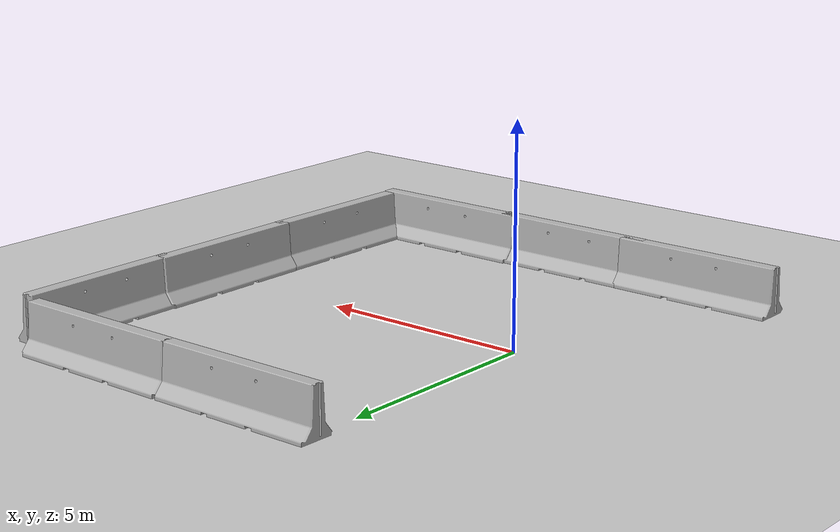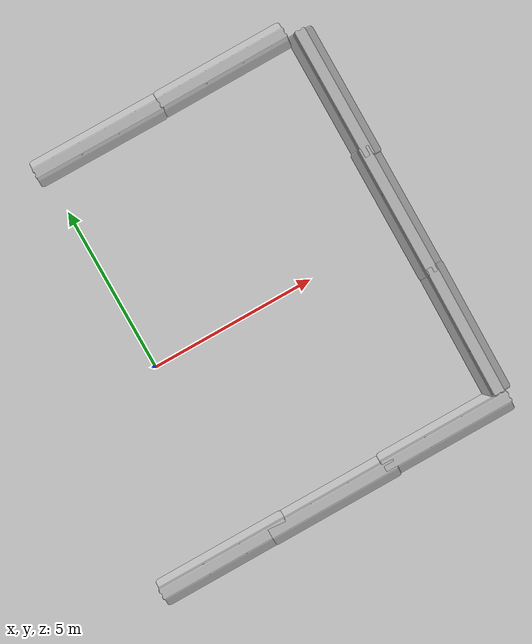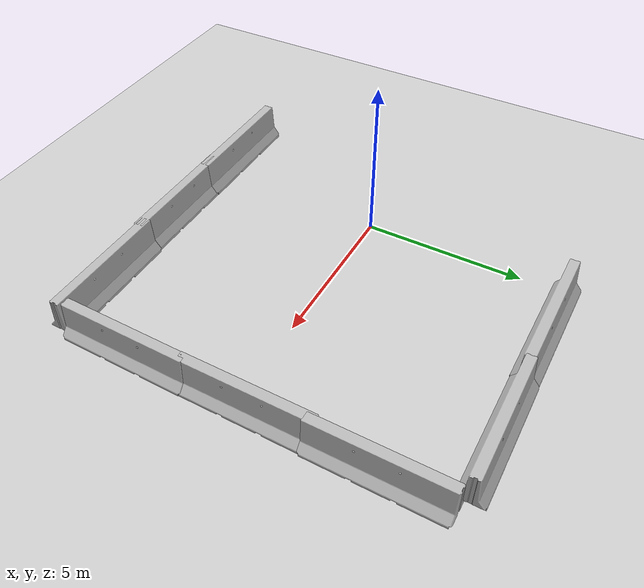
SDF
<sdf version="1.6">
 <world name="default">
  <model name="ground_plane">
   <static>1</static>
   <link name="link">
    <collision name="collision">
     <geometry><plane><normal>0 0 1</normal><size>100 100</size></plane></geometry>
     <surface><friction><ode><mu>100</mu><mu2>50</mu2></ode></friction></surface>
    </collision>
    <visual name="visual">
     <cast_shadows>0</cast_shadows>
     <geometry><plane><normal>0 0 1</normal><size>100 100</size></plane></geometry>
     <material>
      <script><uri>file://media/materials/scripts/gazebo.material</uri><name>Gazebo/Grey</name></script>
     </material>
    </visual>
   </link>
  </model>
  <model name="jersey_barrier_1_clone">
   <link name="link">
    <inertial>
     <mass>1</mass>
     <inertia><ixx>1</ixx><ixy>0</ixy><ixz>0</ixz><iyy>1</iyy><iyz>0</iyz><izz>1</izz></inertia>
    </inertial>
    <visual name="visual">
     <geometry>
      <mesh><uri>model://jersey_barrier/meshes/jersey_barrier.dae</uri><scale>1 1 1</scale></mesh>
     </geometry>
     <material><shader type="vertex"><normal_map>__default__</normal_map></shader></material>
    </visual>
    <collision name="base">
     <pose>0 0 0.032258 0 -0 0</pose>
     <geometry><box><size>4.06542 0.8107 0.064516</size></box></geometry>
     <surface>
      <friction>
       <ode><mu>1</mu><mu2>1</mu2><fdir1>0 0 0</fdir1><slip1>0</slip1><slip2>0</slip2></ode>
       <torsional>
        <coefficient>1</coefficient>
        <patch_radius>0</patch_radius>
        <surface_radius>0</surface_radius>
        <use_patch_radius>1</use_patch_radius>
        <ode><slip>0</slip></ode>
       </torsional>
      </friction>
      <bounce><restitution_coefficient>0</restitution_coefficient><threshold>1e+06</threshold></bounce>
      <contact>
       <collide_without_contact>0</collide_without_contact>
       <collide_without_contact_bitmask>1</collide_without_contact_bitmask>
       <collide_bitmask>1</collide_bitmask>
       <ode>
        <soft_cfm>0</soft_cfm>
        <soft_erp>0.2</soft_erp>
        <kp>1e+13</kp>
        <kd>1</kd>
        <max_vel>0.01</max_vel>
        <min_depth>0</min_depth>
       </ode>
       <bullet>
        <split_impulse>1</split_impulse>
        <split_impulse_penetration_threshold>-0.01</split_impulse_penetration_threshold>
        <soft_cfm>0</soft_cfm>
        <soft_erp>0.2</soft_erp>
        <kp>1e+13</kp>
        <kd>1</kd>
       </bullet>
      </contact>
     </surface>
    </collision>
    <collision name="upright">
     <pose>0 0 0.5715 0 -0 0</pose>
     <geometry><box><size>4.06542 0.3063 1.143</size></box></geometry>
     <surface>
      <friction>
       <ode><mu>1</mu><mu2>1</mu2><fdir1>0 0 0</fdir1><slip1>0</slip1><slip2>0</slip2></ode>
       <torsional>
        <coefficient>1</coefficient>
        <patch_radius>0</patch_radius>
        <surface_radius>0</surface_radius>
        <use_patch_radius>1</use_patch_radius>
        <ode><slip>0</slip></ode>
       </torsional>
      </friction>
      <bounce><restitution_coefficient>0</restitution_coefficient><threshold>1e+06</threshold></bounce>
      <contact>
       <collide_without_contact>0</collide_without_contact>
       <collide_without_contact_bitmask>1</collide_without_contact_bitmask>
       <collide_bitmask>1</collide_bitmask>
       <ode>
        <soft_cfm>0</soft_cfm>
        <soft_erp>0.2</soft_erp>
        <kp>1e+13</kp>
        <kd>1</kd>
        <max_vel>0.01</max_vel>
        <min_depth>0</min_depth>
       </ode>
       <bullet>
        <split_impulse>1</split_impulse>
        <split_impulse_penetration_threshold>-0.01</split_impulse_penetration_threshold>
        <soft_cfm>0</soft_cfm>
        <soft_erp>0.2</soft_erp>
        <kp>1e+13</kp>
        <kd>1</kd>
       </bullet>
      </contact>
     </surface>
    </collision>
    <collision name="left-angle">
     <pose>0 -0.224 0.2401 0.9 -0 0</pose>
     <geometry><box><size>4.06542 0.5 0.064516</size></box></geometry>
     <surface>
      <friction>
       <ode><mu>1</mu><mu2>1</mu2><fdir1>0 0 0</fdir1><slip1>0</slip1><slip2>0</slip2></ode>
       <torsional>
        <coefficient>1</coefficient>
        <patch_radius>0</patch_radius>
        <surface_radius>0</surface_radius>
        <use_patch_radius>1</use_patch_radius>
        <ode><slip>0</slip></ode>
       </torsional>
      </friction>
      <bounce><restitution_coefficient>0</restitution_coefficient><threshold>1e+06</threshold></bounce>
      <contact>
       <collide_without_contact>0</collide_without_contact>
       <collide_without_contact_bitmask>1</collide_without_contact_bitmask>
       <collide_bitmask>1</collide_bitmask>
       <ode>
        <soft_cfm>0</soft_cfm>
        <soft_erp>0.2</soft_erp>
        <kp>1e+13</kp>
        <kd>1</kd>
        <max_vel>0.01</max_vel>
        <min_depth>0</min_depth>
       </ode>
       <bullet>
        <split_impulse>1</split_impulse>
        <split_impulse_penetration_threshold>-0.01</split_impulse_penetration_threshold>
        <soft_cfm>0</soft_cfm>
        <soft_erp>0.2</soft_erp>
        <kp>1e+13</kp>
        <kd>1</kd>
       </bullet>
      </contact>
     </surface>
    </collision>
    <collision name="base2">
     <pose>0 0 0.1 0 -0 0</pose>
     <geometry><box><size>4.06542 0.65 0.1</size></box></geometry>
     <surface>
      <friction>
       <ode><mu>1</mu><mu2>1</mu2><fdir1>0 0 0</fdir1><slip1>0</slip1><slip2>0</slip2></ode>
       <torsional>
        <coefficient>1</coefficient>
        <patch_radius>0</patch_radius>
        <surface_radius>0</surface_radius>
        <use_patch_radius>1</use_patch_radius>
        <ode><slip>0</slip></ode>
       </torsional>
      </friction>
      <bounce><restitution_coefficient>0</restitution_coefficient><threshold>1e+06</threshold></bounce>
      <contact>
       <collide_without_contact>0</collide_without_contact>
       <collide_without_contact_bitmask>1</collide_without_contact_bitmask>
       <collide_bitmask>1</collide_bitmask>
       <ode>
        <soft_cfm>0</soft_cfm>
        <soft_erp>0.2</soft_erp>
        <kp>1e+13</kp>
        <kd>1</kd>
        <max_vel>0.01</max_vel>
        <min_depth>0</min_depth>
       </ode>
       <bullet>
        <split_impulse>1</split_impulse>
        <split_impulse_penetration_threshold>-0.01</split_impulse_penetration_threshold>
        <soft_cfm>0</soft_cfm>
        <soft_erp>0.2</soft_erp>
        <kp>1e+13</kp>
        <kd>1</kd>
       </bullet>
      </contact>
     </surface>
    </collision>
    <collision name="base3">
     <pose>0 0 0.2 0 -0 0</pose>
     <geometry><box><size>4.06542 0.5 0.1</size></box></geometry>
     <surface>
      <friction>
       <ode><mu>1</mu><mu2>1</mu2><fdir1>0 0 0</fdir1><slip1>0</slip1><slip2>0</slip2></ode>
       <torsional>
        <coefficient>1</coefficient>
        <patch_radius>0</patch_radius>
        <surface_radius>0</surface_radius>
        <use_patch_radius>1</use_patch_radius>
        <ode><slip>0</slip></ode>
       </torsional>
      </friction>
      <bounce><restitution_coefficient>0</restitution_coefficient><threshold>1e+06</threshold></bounce>
      <contact>
       <collide_without_contact>0</collide_without_contact>
       <collide_without_contact_bitmask>1</collide_without_contact_bitmask>
       <collide_bitmask>1</collide_bitmask>
       <ode>
        <soft_cfm>0</soft_cfm>
        <soft_erp>0.2</soft_erp>
        <kp>1e+13</kp>
        <kd>1</kd>
        <max_vel>0.01</max_vel>
        <min_depth>0</min_depth>
       </ode>
       <bullet>
        <split_impulse>1</split_impulse>
        <split_impulse_penetration_threshold>-0.01</split_impulse_penetration_threshold>
        <soft_cfm>0</soft_cfm>
        <soft_erp>0.2</soft_erp>
        <kp>1e+13</kp>
        <kd>1</kd>
       </bullet>
      </contact>
     </surface>
    </collision>
    <collision name="right-angle">
     <pose>0 0.224 0.2401 -0.9 0 0</pose>
     <geometry><box><size>4.06542 0.5 0.064516</size></box></geometry>
     <surface>
      <friction>
       <ode><mu>1</mu><mu2>1</mu2><fdir1>0 0 0</fdir1><slip1>0</slip1><slip2>0</slip2></ode>
       <torsional>
        <coefficient>1</coefficient>
        <patch_radius>0</patch_radius>
        <surface_radius>0</surface_radius>
        <use_patch_radius>1</use_patch_radius>
        <ode><slip>0</slip></ode>
       </torsional>
      </friction>
      <bounce><restitution_coefficient>0</restitution_coefficient><threshold>1e+06</threshold></bounce>
      <contact>
       <collide_without_contact>0</collide_without_contact>
       <collide_without_contact_bitmask>1</collide_without_contact_bitmask>
       <collide_bitmask>1</collide_bitmask>
       <ode>
        <soft_cfm>0</soft_cfm>
        <soft_erp>0.2</soft_erp>
        <kp>1e+13</kp>
        <kd>1</kd>
        <max_vel>0.01</max_vel>
        <min_depth>0</min_depth>
       </ode>
       <bullet>
        <split_impulse>1</split_impulse>
        <split_impulse_penetration_threshold>-0.01</split_impulse_penetration_threshold>
        <soft_cfm>0</soft_cfm>
        <soft_erp>0.2</soft_erp>
        <kp>1e+13</kp>
        <kd>1</kd>
       </bullet>
      </contact>
     </surface>
    </collision>
   </link>
   <static>1</static>
   <pose>1.74259 6.33982 0 -0.010959 -0.007344 3.13544</pose>
  </model>
  <model name="jersey_barrier_0_clone_2_1">
   <link name="link">
    <inertial>
     <mass>1</mass>
     <inertia><ixx>1</ixx><ixy>0</ixy><ixz>0</ixz><iyy>1</iyy><iyz>0</iyz><izz>1</izz></inertia>
    </inertial>
    <visual name="visual">
     <geometry>
      <mesh><uri>model://jersey_barrier/meshes/jersey_barrier.dae</uri><scale>1 1 1</scale></mesh>
     </geometry>
     <material><shader type="vertex"><normal_map>__default__</normal_map></shader></material>
    </visual>
    <collision name="upright">
     <pose>0 0 0.5715 0 -0 0</pose>
     <geometry><box><size>4.06542 0.3063 1.143</size></box></geometry>
     <surface>
      <friction>
       <ode><mu>1</mu><mu2>1</mu2><fdir1>0 0 0</fdir1><slip1>0</slip1><slip2>0</slip2></ode>
       <torsional>
        <coefficient>1</coefficient>
        <patch_radius>0</patch_radius>
        <surface_radius>0</surface_radius>
        <use_patch_radius>1</use_patch_radius>
        <ode><slip>0</slip></ode>
       </torsional>
      </friction>
      <bounce><restitution_coefficient>0</restitution_coefficient><threshold>1e+06</threshold></bounce>
      <contact>
       <collide_without_contact>0</collide_without_contact>
       <collide_without_contact_bitmask>1</collide_without_contact_bitmask>
       <collide_bitmask>1</collide_bitmask>
       <ode>
        <soft_cfm>0</soft_cfm>
        <soft_erp>0.2</soft_erp>
        <kp>1e+13</kp>
        <kd>1</kd>
        <max_vel>0.01</max_vel>
        <min_depth>0</min_depth>
       </ode>
       <bullet>
        <split_impulse>1</split_impulse>
        <split_impulse_penetration_threshold>-0.01</split_impulse_penetration_threshold>
        <soft_cfm>0</soft_cfm>
        <soft_erp>0.2</soft_erp>
        <kp>1e+13</kp>
        <kd>1</kd>
       </bullet>
      </contact>
     </surface>
    </collision>
    <collision name="base3">
     <pose>0 0 0.2 0 -0 0</pose>
     <geometry><box><size>4.06542 0.5 0.1</size></box></geometry>
     <surface>
      <friction>
       <ode><mu>1</mu><mu2>1</mu2><fdir1>0 0 0</fdir1><slip1>0</slip1><slip2>0</slip2></ode>
       <torsional>
        <coefficient>1</coefficient>
        <patch_radius>0</patch_radius>
        <surface_radius>0</surface_radius>
        <use_patch_radius>1</use_patch_radius>
        <ode><slip>0</slip></ode>
       </torsional>
      </friction>
      <bounce><restitution_coefficient>0</restitution_coefficient><threshold>1e+06</threshold></bounce>
      <contact>
       <collide_without_contact>0</collide_without_contact>
       <collide_without_contact_bitmask>1</collide_without_contact_bitmask>
       <collide_bitmask>1</collide_bitmask>
       <ode>
        <soft_cfm>0</soft_cfm>
        <soft_erp>0.2</soft_erp>
        <kp>1e+13</kp>
        <kd>1</kd>
        <max_vel>0.01</max_vel>
        <min_depth>0</min_depth>
       </ode>
       <bullet>
        <split_impulse>1</split_impulse>
        <split_impulse_penetration_threshold>-0.01</split_impulse_penetration_threshold>
        <soft_cfm>0</soft_cfm>
        <soft_erp>0.2</soft_erp>
        <kp>1e+13</kp>
        <kd>1</kd>
       </bullet>
      </contact>
     </surface>
    </collision>
    <collision name="base">
     <pose>0 0 0.032258 0 -0 0</pose>
     <geometry><box><size>4.06542 0.8107 0.064516</size></box></geometry>
     <surface>
      <friction>
       <ode><mu>1</mu><mu2>1</mu2><fdir1>0 0 0</fdir1><slip1>0</slip1><slip2>0</slip2></ode>
       <torsional>
        <coefficient>1</coefficient>
        <patch_radius>0</patch_radius>
        <surface_radius>0</surface_radius>
        <use_patch_radius>1</use_patch_radius>
        <ode><slip>0</slip></ode>
       </torsional>
      </friction>
      <bounce><restitution_coefficient>0</restitution_coefficient><threshold>1e+06</threshold></bounce>
      <contact>
       <collide_without_contact>0</collide_without_contact>
       <collide_without_contact_bitmask>1</collide_without_contact_bitmask>
       <collide_bitmask>1</collide_bitmask>
       <ode>
        <soft_cfm>0</soft_cfm>
        <soft_erp>0.2</soft_erp>
        <kp>1e+13</kp>
        <kd>1</kd>
        <max_vel>0.01</max_vel>
        <min_depth>0</min_depth>
       </ode>
       <bullet>
        <split_impulse>1</split_impulse>
        <split_impulse_penetration_threshold>-0.01</split_impulse_penetration_threshold>
        <soft_cfm>0</soft_cfm>
        <soft_erp>0.2</soft_erp>
        <kp>1e+13</kp>
        <kd>1</kd>
       </bullet>
      </contact>
     </surface>
    </collision>
    <collision name="base2">
     <pose>0 0 0.1 0 -0 0</pose>
     <geometry><box><size>4.06542 0.65 0.1</size></box></geometry>
     <surface>
      <friction>
       <ode><mu>1</mu><mu2>1</mu2><fdir1>0 0 0</fdir1><slip1>0</slip1><slip2>0</slip2></ode>
       <torsional>
        <coefficient>1</coefficient>
        <patch_radius>0</patch_radius>
        <surface_radius>0</surface_radius>
        <use_patch_radius>1</use_patch_radius>
        <ode><slip>0</slip></ode>
       </torsional>
      </friction>
      <bounce><restitution_coefficient>0</restitution_coefficient><threshold>1e+06</threshold></bounce>
      <contact>
       <collide_without_contact>0</collide_without_contact>
       <collide_without_contact_bitmask>1</collide_without_contact_bitmask>
       <collide_bitmask>1</collide_bitmask>
       <ode>
        <soft_cfm>0</soft_cfm>
        <soft_erp>0.2</soft_erp>
        <kp>1e+13</kp>
        <kd>1</kd>
        <max_vel>0.01</max_vel>
        <min_depth>0</min_depth>
       </ode>
       <bullet>
        <split_impulse>1</split_impulse>
        <split_impulse_penetration_threshold>-0.01</split_impulse_penetration_threshold>
        <soft_cfm>0</soft_cfm>
        <soft_erp>0.2</soft_erp>
        <kp>1e+13</kp>
        <kd>1</kd>
       </bullet>
      </contact>
     </surface>
    </collision>
    <collision name="left-angle">
     <pose>0 -0.224 0.2401 0.9 -0 0</pose>
     <geometry><box><size>4.06542 0.5 0.064516</size></box></geometry>
     <surface>
      <friction>
       <ode><mu>1</mu><mu2>1</mu2><fdir1>0 0 0</fdir1><slip1>0</slip1><slip2>0</slip2></ode>
       <torsional>
        <coefficient>1</coefficient>
        <patch_radius>0</patch_radius>
        <surface_radius>0</surface_radius>
        <use_patch_radius>1</use_patch_radius>
        <ode><slip>0</slip></ode>
       </torsional>
      </friction>
      <bounce><restitution_coefficient>0</restitution_coefficient><threshold>1e+06</threshold></bounce>
      <contact>
       <collide_without_contact>0</collide_without_contact>
       <collide_without_contact_bitmask>1</collide_without_contact_bitmask>
       <collide_bitmask>1</collide_bitmask>
       <ode>
        <soft_cfm>0</soft_cfm>
        <soft_erp>0.2</soft_erp>
        <kp>1e+13</kp>
        <kd>1</kd>
        <max_vel>0.01</max_vel>
        <min_depth>0</min_depth>
       </ode>
       <bullet>
        <split_impulse>1</split_impulse>
        <split_impulse_penetration_threshold>-0.01</split_impulse_penetration_threshold>
        <soft_cfm>0</soft_cfm>
        <soft_erp>0.2</soft_erp>
        <kp>1e+13</kp>
        <kd>1</kd>
       </bullet>
      </contact>
     </surface>
    </collision>
    <collision name="right-angle">
     <pose>0 0.224 0.2401 -0.9 0 0</pose>
     <geometry><box><size>4.06542 0.5 0.064516</size></box></geometry>
     <surface>
      <friction>
       <ode><mu>1</mu><mu2>1</mu2><fdir1>0 0 0</fdir1><slip1>0</slip1><slip2>0</slip2></ode>
       <torsional>
        <coefficient>1</coefficient>
        <patch_radius>0</patch_radius>
        <surface_radius>0</surface_radius>
        <use_patch_radius>1</use_patch_radius>
        <ode><slip>0</slip></ode>
       </torsional>
      </friction>
      <bounce><restitution_coefficient>0</restitution_coefficient><threshold>1e+06</threshold></bounce>
      <contact>
       <collide_without_contact>0</collide_without_contact>
       <collide_without_contact_bitmask>1</collide_without_contact_bitmask>
       <collide_bitmask>1</collide_bitmask>
       <ode>
        <soft_cfm>0</soft_cfm>
        <soft_erp>0.2</soft_erp>
        <kp>1e+13</kp>
        <kd>1</kd>
        <max_vel>0.01</max_vel>
        <min_depth>0</min_depth>
       </ode>
       <bullet>
        <split_impulse>1</split_impulse>
        <split_impulse_penetration_threshold>-0.01</split_impulse_penetration_threshold>
        <soft_cfm>0</soft_cfm>
        <soft_erp>0.2</soft_erp>
        <kp>1e+13</kp>
        <kd>1</kd>
       </bullet>
      </contact>
     </surface>
    </collision>
   </link>
   <static>1</static>
   <pose>2.50416 -5.64344 0 0 -0 0</pose>
  </model>
  <model name="jersey_barrier_0_clone_2_3">
   <link name="link">
    <inertial>
     <mass>1</mass>
     <inertia><ixx>1</ixx><ixy>0</ixy><ixz>0</ixz><iyy>1</iyy><iyz>0</iyz><izz>1</izz></inertia>
    </inertial>
    <visual name="visual">
     <geometry>
      <mesh><uri>model://jersey_barrier/meshes/jersey_barrier.dae</uri><scale>1 1 1</scale></mesh>
     </geometry>
     <material><shader type="vertex"><normal_map>__default__</normal_map></shader></material>
    </visual>
    <collision name="upright">
     <pose>0 0 0.5715 0 -0 0</pose>
     <geometry><box><size>4.06542 0.3063 1.143</size></box></geometry>
     <surface>
      <friction>
       <ode><mu>1</mu><mu2>1</mu2><fdir1>0 0 0</fdir1><slip1>0</slip1><slip2>0</slip2></ode>
       <torsional>
        <coefficient>1</coefficient>
        <patch_radius>0</patch_radius>
        <surface_radius>0</surface_radius>
        <use_patch_radius>1</use_patch_radius>
        <ode><slip>0</slip></ode>
       </torsional>
      </friction>
      <bounce><restitution_coefficient>0</restitution_coefficient><threshold>1e+06</threshold></bounce>
      <contact>
       <collide_without_contact>0</collide_without_contact>
       <collide_without_contact_bitmask>1</collide_without_contact_bitmask>
       <collide_bitmask>1</collide_bitmask>
       <ode>
        <soft_cfm>0</soft_cfm>
        <soft_erp>0.2</soft_erp>
        <kp>1e+13</kp>
        <kd>1</kd>
        <max_vel>0.01</max_vel>
        <min_depth>0</min_depth>
       </ode>
       <bullet>
        <split_impulse>1</split_impulse>
        <split_impulse_penetration_threshold>-0.01</split_impulse_penetration_threshold>
        <soft_cfm>0</soft_cfm>
        <soft_erp>0.2</soft_erp>
        <kp>1e+13</kp>
        <kd>1</kd>
       </bullet>
      </contact>
     </surface>
    </collision>
    <collision name="base3">
     <pose>0 0 0.2 0 -0 0</pose>
     <geometry><box><size>4.06542 0.5 0.1</size></box></geometry>
     <surface>
      <friction>
       <ode><mu>1</mu><mu2>1</mu2><fdir1>0 0 0</fdir1><slip1>0</slip1><slip2>0</slip2></ode>
       <torsional>
        <coefficient>1</coefficient>
        <patch_radius>0</patch_radius>
        <surface_radius>0</surface_radius>
        <use_patch_radius>1</use_patch_radius>
        <ode><slip>0</slip></ode>
       </torsional>
      </friction>
      <bounce><restitution_coefficient>0</restitution_coefficient><threshold>1e+06</threshold></bounce>
      <contact>
       <collide_without_contact>0</collide_without_contact>
       <collide_without_contact_bitmask>1</collide_without_contact_bitmask>
       <collide_bitmask>1</collide_bitmask>
       <ode>
        <soft_cfm>0</soft_cfm>
        <soft_erp>0.2</soft_erp>
        <kp>1e+13</kp>
        <kd>1</kd>
        <max_vel>0.01</max_vel>
        <min_depth>0</min_depth>
       </ode>
       <bullet>
        <split_impulse>1</split_impulse>
        <split_impulse_penetration_threshold>-0.01</split_impulse_penetration_threshold>
        <soft_cfm>0</soft_cfm>
        <soft_erp>0.2</soft_erp>
        <kp>1e+13</kp>
        <kd>1</kd>
       </bullet>
      </contact>
     </surface>
    </collision>
    <collision name="base">
     <pose>0 0 0.032258 0 -0 0</pose>
     <geometry><box><size>4.06542 0.8107 0.064516</size></box></geometry>
     <surface>
      <friction>
       <ode><mu>1</mu><mu2>1</mu2><fdir1>0 0 0</fdir1><slip1>0</slip1><slip2>0</slip2></ode>
       <torsional>
        <coefficient>1</coefficient>
        <patch_radius>0</patch_radius>
        <surface_radius>0</surface_radius>
        <use_patch_radius>1</use_patch_radius>
        <ode><slip>0</slip></ode>
       </torsional>
      </friction>
      <bounce><restitution_coefficient>0</restitution_coefficient><threshold>1e+06</threshold></bounce>
      <contact>
       <collide_without_contact>0</collide_without_contact>
       <collide_without_contact_bitmask>1</collide_without_contact_bitmask>
       <collide_bitmask>1</collide_bitmask>
       <ode>
        <soft_cfm>0</soft_cfm>
        <soft_erp>0.2</soft_erp>
        <kp>1e+13</kp>
        <kd>1</kd>
        <max_vel>0.01</max_vel>
        <min_depth>0</min_depth>
       </ode>
       <bullet>
        <split_impulse>1</split_impulse>
        <split_impulse_penetration_threshold>-0.01</split_impulse_penetration_threshold>
        <soft_cfm>0</soft_cfm>
        <soft_erp>0.2</soft_erp>
        <kp>1e+13</kp>
        <kd>1</kd>
       </bullet>
      </contact>
     </surface>
    </collision>
    <collision name="base2">
     <pose>0 0 0.1 0 -0 0</pose>
     <geometry><box><size>4.06542 0.65 0.1</size></box></geometry>
     <surface>
      <friction>
       <ode><mu>1</mu><mu2>1</mu2><fdir1>0 0 0</fdir1><slip1>0</slip1><slip2>0</slip2></ode>
       <torsional>
        <coefficient>1</coefficient>
        <patch_radius>0</patch_radius>
        <surface_radius>0</surface_radius>
        <use_patch_radius>1</use_patch_radius>
        <ode><slip>0</slip></ode>
       </torsional>
      </friction>
      <bounce><restitution_coefficient>0</restitution_coefficient><threshold>1e+06</threshold></bounce>
      <contact>
       <collide_without_contact>0</collide_without_contact>
       <collide_without_contact_bitmask>1</collide_without_contact_bitmask>
       <collide_bitmask>1</collide_bitmask>
       <ode>
        <soft_cfm>0</soft_cfm>
        <soft_erp>0.2</soft_erp>
        <kp>1e+13</kp>
        <kd>1</kd>
        <max_vel>0.01</max_vel>
        <min_depth>0</min_depth>
       </ode>
       <bullet>
        <split_impulse>1</split_impulse>
        <split_impulse_penetration_threshold>-0.01</split_impulse_penetration_threshold>
        <soft_cfm>0</soft_cfm>
        <soft_erp>0.2</soft_erp>
        <kp>1e+13</kp>
        <kd>1</kd>
       </bullet>
      </contact>
     </surface>
    </collision>
    <collision name="left-angle">
     <pose>0 -0.224 0.2401 0.9 -0 0</pose>
     <geometry><box><size>4.06542 0.5 0.064516</size></box></geometry>
     <surface>
      <friction>
       <ode><mu>1</mu><mu2>1</mu2><fdir1>0 0 0</fdir1><slip1>0</slip1><slip2>0</slip2></ode>
       <torsional>
        <coefficient>1</coefficient>
        <patch_radius>0</patch_radius>
        <surface_radius>0</surface_radius>
        <use_patch_radius>1</use_patch_radius>
        <ode><slip>0</slip></ode>
       </torsional>
      </friction>
      <bounce><restitution_coefficient>0</restitution_coefficient><threshold>1e+06</threshold></bounce>
      <contact>
       <collide_without_contact>0</collide_without_contact>
       <collide_without_contact_bitmask>1</collide_without_contact_bitmask>
       <collide_bitmask>1</collide_bitmask>
       <ode>
        <soft_cfm>0</soft_cfm>
        <soft_erp>0.2</soft_erp>
        <kp>1e+13</kp>
        <kd>1</kd>
        <max_vel>0.01</max_vel>
        <min_depth>0</min_depth>
       </ode>
       <bullet>
        <split_impulse>1</split_impulse>
        <split_impulse_penetration_threshold>-0.01</split_impulse_penetration_threshold>
        <soft_cfm>0</soft_cfm>
        <soft_erp>0.2</soft_erp>
        <kp>1e+13</kp>
        <kd>1</kd>
       </bullet>
      </contact>
     </surface>
    </collision>
    <collision name="right-angle">
     <pose>0 0.224 0.2401 -0.9 0 0</pose>
     <geometry><box><size>4.06542 0.5 0.064516</size></box></geometry>
     <surface>
      <friction>
       <ode><mu>1</mu><mu2>1</mu2><fdir1>0 0 0</fdir1><slip1>0</slip1><slip2>0</slip2></ode>
       <torsional>
        <coefficient>1</coefficient>
        <patch_radius>0</patch_radius>
        <surface_radius>0</surface_radius>
        <use_patch_radius>1</use_patch_radius>
        <ode><slip>0</slip></ode>
       </torsional>
      </friction>
      <bounce><restitution_coefficient>0</restitution_coefficient><threshold>1e+06</threshold></bounce>
      <contact>
       <collide_without_contact>0</collide_without_contact>
       <collide_without_contact_bitmask>1</collide_without_contact_bitmask>
       <collide_bitmask>1</collide_bitmask>
       <ode>
        <soft_cfm>0</soft_cfm>
        <soft_erp>0.2</soft_erp>
        <kp>1e+13</kp>
        <kd>1</kd>
        <max_vel>0.01</max_vel>
        <min_depth>0</min_depth>
       </ode>
       <bullet>
        <split_impulse>1</split_impulse>
        <split_impulse_penetration_threshold>-0.01</split_impulse_penetration_threshold>
        <soft_cfm>0</soft_cfm>
        <soft_erp>0.2</soft_erp>
        <kp>1e+13</kp>
        <kd>1</kd>
       </bullet>
      </contact>
     </surface>
    </collision>
   </link>
   <static>1</static>
   <pose>5.74367 6.34487 0 0 -0 0</pose>
  </model>
  <model name="jersey_barrier">
   <static>1</static>
   <link name="link">
    <visual name="visual">
     <geometry>
      <mesh><uri>model://jersey_barrier/meshes/jersey_barrier.dae</uri><scale>1 1 1</scale></mesh>
     </geometry>
    </visual>
    <collision name="upright">
     <pose>0 0 0.5715 0 -0 0</pose>
     <geometry><box><size>4.06542 0.3063 1.143</size></box></geometry>
    </collision>
    <collision name="base">
     <pose>0 0 0.032258 0 -0 0</pose>
     <geometry><box><size>4.06542 0.8107 0.064516</size></box></geometry>
    </collision>
    <collision name="base2">
     <pose>0 0 0.1 0 -0 0</pose>
     <geometry><box><size>4.06542 0.65 0.1</size></box></geometry>
    </collision>
    <collision name="base3">
     <pose>0 0 0.2 0 -0 0</pose>
     <geometry><box><size>4.06542 0.5 0.1</size></box></geometry>
    </collision>
    <collision name="left-angle">
     <pose>0 -0.224 0.2401 0.9 -0 0</pose>
     <geometry><box><size>4.06542 0.5 0.064516</size></box></geometry>
    </collision>
    <collision name="right-angle">
     <pose>0 0.224 0.2401 -0.9 0 0</pose>
     <geometry><box><size>4.06542 0.5 0.064516</size></box></geometry>
    </collision>
   </link>
   <pose>-0.955946 -5.63031 0 0 -0 0</pose>
  </model>
  <model name="jersey_barrier_0">
   <static>1</static>
   <link name="link">
    <visual name="visual">
     <geometry>
      <mesh><uri>model://jersey_barrier/meshes/jersey_barrier.dae</uri><scale>1 1 1</scale></mesh>
     </geometry>
    </visual>
    <collision name="upright">
     <pose>0 0 0.5715 0 -0 0</pose>
     <geometry><box><size>4.06542 0.3063 1.143</size></box></geometry>
    </collision>
    <collision name="base">
     <pose>0 0 0.032258 0 -0 0</pose>
     <geometry><box><size>4.06542 0.8107 0.064516</size></box></geometry>
    </collision>
    <collision name="base2">
     <pose>0 0 0.1 0 -0 0</pose>
     <geometry><box><size>4.06542 0.65 0.1</size></box></geometry>
    </collision>
    <collision name="base3">
     <pose>0 0 0.2 0 -0 0</pose>
     <geometry><box><size>4.06542 0.5 0.1</size></box></geometry>
    </collision>
    <collision name="left-angle">
     <pose>0 -0.224 0.2401 0.9 -0 0</pose>
     <geometry><box><size>4.06542 0.5 0.064516</size></box></geometry>
    </collision>
    <collision name="right-angle">
     <pose>0 0.224 0.2401 -0.9 0 0</pose>
     <geometry><box><size>4.06542 0.5 0.064516</size></box></geometry>
    </collision>
   </link>
   <pose>6.18796 -5.59602 0 0 -0 0</pose>
  </model>
  <model name="jersey_barrier_2">
   <static>1</static>
   <link name="link">
    <visual name="visual">
     <geometry>
      <mesh><uri>model://jersey_barrier/meshes/jersey_barrier.dae</uri><scale>1 1 1</scale></mesh>
     </geometry>
    </visual>
    <collision name="upright">
     <pose>0 0 0.5715 0 -0 0</pose>
     <geometry><box><size>4.06542 0.3063 1.143</size></box></geometry>
    </collision>
    <collision name="base">
     <pose>0 0 0.032258 0 -0 0</pose>
     <geometry><box><size>4.06542 0.8107 0.064516</size></box></geometry>
    </collision>
    <collision name="base2">
     <pose>0 0 0.1 0 -0 0</pose>
     <geometry><box><size>4.06542 0.65 0.1</size></box></geometry>
    </collision>
    <collision name="base3">
     <pose>0 0 0.2 0 -0 0</pose>
     <geometry><box><size>4.06542 0.5 0.1</size></box></geometry>
    </collision>
    <collision name="left-angle">
     <pose>0 -0.224 0.2401 0.9 -0 0</pose>
     <geometry><box><size>4.06542 0.5 0.064516</size></box></geometry>
    </collision>
    <collision name="right-angle">
     <pose>0 0.224 0.2401 -0.9 0 0</pose>
     <geometry><box><size>4.06542 0.5 0.064516</size></box></geometry>
    </collision>
   </link>
   <pose>8.13806 4.18233 0 0 -0 1.56619</pose>
  </model>
  <model name="jersey_barrier_2_clone">
   <static>1</static>
   <link name="link">
    <visual name="visual">
     <geometry>
      <mesh><uri>model://jersey_barrier/meshes/jersey_barrier.dae</uri><scale>1 1 1</scale></mesh>
     </geometry>
    </visual>
    <collision name="upright">
     <pose>0 0 0.5715 0 -0 0</pose>
     <geometry><box><size>4.06542 0.3063 1.143</size></box></geometry>
    </collision>
    <collision name="base">
     <pose>0 0 0.032258 0 -0 0</pose>
     <geometry><box><size>4.06542 0.8107 0.064516</size></box></geometry>
    </collision>
    <collision name="base2">
     <pose>0 0 0.1 0 -0 0</pose>
     <geometry><box><size>4.06542 0.65 0.1</size></box></geometry>
    </collision>
    <collision name="base3">
     <pose>0 0 0.2 0 -0 0</pose>
     <geometry><box><size>4.06542 0.5 0.1</size></box></geometry>
    </collision>
    <collision name="left-angle">
     <pose>0 -0.224 0.2401 0.9 -0 0</pose>
     <geometry><box><size>4.06542 0.5 0.064516</size></box></geometry>
    </collision>
    <collision name="right-angle">
     <pose>0 0.224 0.2401 -0.9 0 0</pose>
     <geometry><box><size>4.06542 0.5 0.064516</size></box></geometry>
    </collision>
   </link>
   <pose>8.07327 0.454655 0 0 -0 1.56395</pose>
  </model>
  <model name="jersey_barrier_2_clone_clone">
   <static>1</static>
   <link name="link">
    <visual name="visual">
     <geometry>
      <mesh><uri>model://jersey_barrier/meshes/jersey_barrier.dae</uri><scale>1 1 1</scale></mesh>
     </geometry>
    </visual>
    <collision name="upright">
     <pose>0 0 0.5715 0 -0 0</pose>
     <geometry><box><size>4.06542 0.3063 1.143</size></box></geometry>
    </collision>
    <collision name="base">
     <pose>0 0 0.032258 0 -0 0</pose>
     <geometry><box><size>4.06542 0.8107 0.064516</size></box></geometry>
    </collision>
    <collision name="base2">
     <pose>0 0 0.1 0 -0 0</pose>
     <geometry><box><size>4.06542 0.65 0.1</size></box></geometry>
    </collision>
    <collision name="base3">
     <pose>0 0 0.2 0 -0 0</pose>
     <geometry><box><size>4.06542 0.5 0.1</size></box></geometry>
    </collision>
    <collision name="left-angle">
     <pose>0 -0.224 0.2401 0.9 -0 0</pose>
     <geometry><box><size>4.06542 0.5 0.064516</size></box></geometry>
    </collision>
    <collision name="right-angle">
     <pose>0 0.224 0.2401 -0.9 0 0</pose>
     <geometry><box><size>4.06542 0.5 0.064516</size></box></geometry>
    </collision>
   </link>
   <pose>8.04245 -3.37114 0 0 -0 1.55433</pose>
  </model>
 </world>
</sdf>
